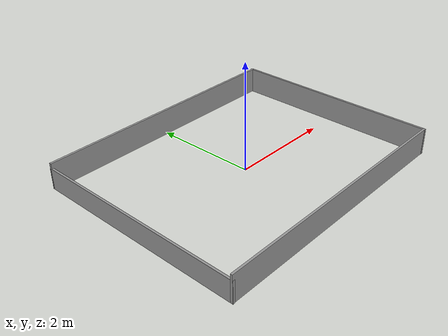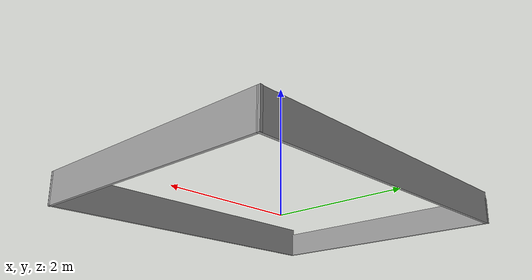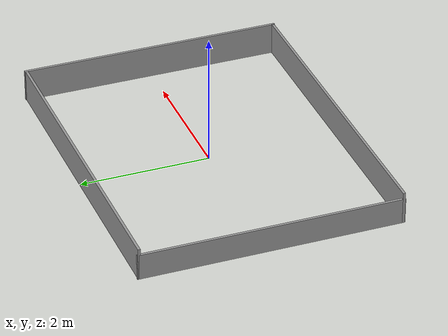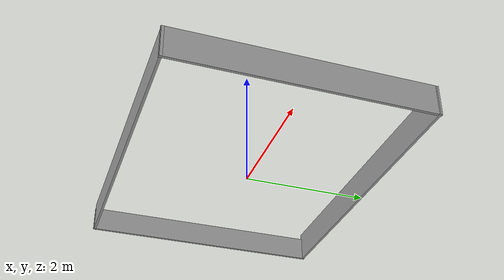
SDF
<?xml version='1.0'?>
<sdf version='1.7'>
  <model name='rk_square'>
    <pose>-0.002809 0.005953 0 0 -0 0</pose>
    <link name='Wall_0'>
      <collision name='Wall_0_Collision'>
        <geometry>
          <box>
            <size>4.02911 0.04 0.4</size>
          </box>
        </geometry>
        <pose>0 0 0.2 0 -0 0</pose>
      </collision>
      <visual name='Wall_0_Visual'>
        <pose>0 0 0.2 0 -0 0</pose>
        <geometry>
          <box>
            <size>4.02911 0.04 0.4</size>
          </box>
        </geometry>
        <material>
          <script>
            <uri>file://media/materials/scripts/gazebo.material</uri>
            <name>Gazebo/Grey</name>
          </script>
          <ambient>1 1 1 1</ambient>
        </material>
        <meta>
          <layer>0</layer>
        </meta>
      </visual>
      <pose>-2.51019 -0.017655 0 0 -0 1.56779</pose>
    </link>
    <link name='Wall_1'>
      <collision name='Wall_1_Collision'>
        <geometry>
          <box>
            <size>5.06062 0.04 0.5</size>
          </box>
        </geometry>
        <pose>0 0 0.25 0 -0 0</pose>
      </collision>
      <visual name='Wall_1_Visual'>
        <pose>0 0 0.25 0 -0 0</pose>
        <geometry>
          <box>
            <size>5.06062 0.04 0.5</size>
          </box>
        </geometry>
        <material>
          <script>
            <uri>file://media/materials/scripts/gazebo.material</uri>
            <name>Gazebo/Grey</name>
          </script>
          <ambient>1 1 1 1</ambient>
        </material>
        <meta>
          <layer>0</layer>
        </meta>
      </visual>
      <pose>0.006055 1.98588 0 0 -0 0.007045</pose>
    </link>
    <link name='Wall_3'>
      <collision name='Wall_3_Collision'>
        <geometry>
          <box>
            <size>4.06346 0.04 0.5</size>
          </box>
        </geometry>
        <pose>0 0 0.25 0 -0 0</pose>
      </collision>
      <visual name='Wall_3_Visual'>
        <pose>0 0 0.25 0 -0 0</pose>
        <geometry>
          <box>
            <size>4.06346 0.04 0.5</size>
          </box>
        </geometry>
        <material>
          <script>
            <uri>file://media/materials/scripts/gazebo.material</uri>
            <name>Gazebo/Grey</name>
          </script>
          <ambient>1 1 1 1</ambient>
        </material>
        <meta>
          <layer>0</layer>
        </meta>
      </visual>
      <pose>2.51606 0.000529 0 0 -0 -1.57092</pose>
    </link>
    <link name='Wall_5'>
      <collision name='Wall_5_Collision'>
        <geometry>
          <box>
            <size>5.07249 0.04 0.5</size>
          </box>
        </geometry>
        <pose>0 0 0.25 0 -0 0</pose>
      </collision>
      <visual name='Wall_5_Visual'>
        <pose>0 0 0.25 0 -0 0</pose>
        <geometry>
          <box>
            <size>5.07249 0.04 0.5</size>
          </box>
        </geometry>
        <material>
          <script>
            <uri>file://media/materials/scripts/gazebo.material</uri>
            <name>Gazebo/Grey</name>
          </script>
          <ambient>1 1 1 1</ambient>
        </material>
        <meta>
          <layer>0</layer>
        </meta>
      </visual>
      <pose>-0.000191 -2.00414 0 0 -0 0.000199</pose>
    </link>
    <static>1</static>
  </model>
</sdf>
